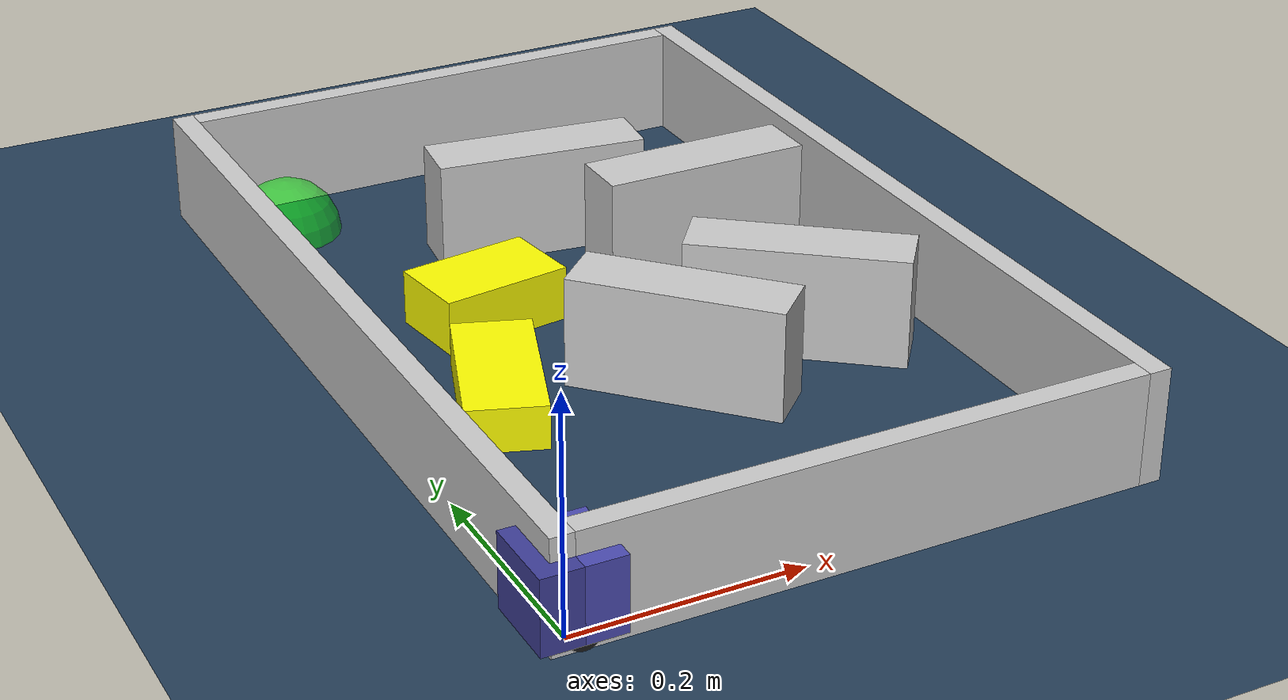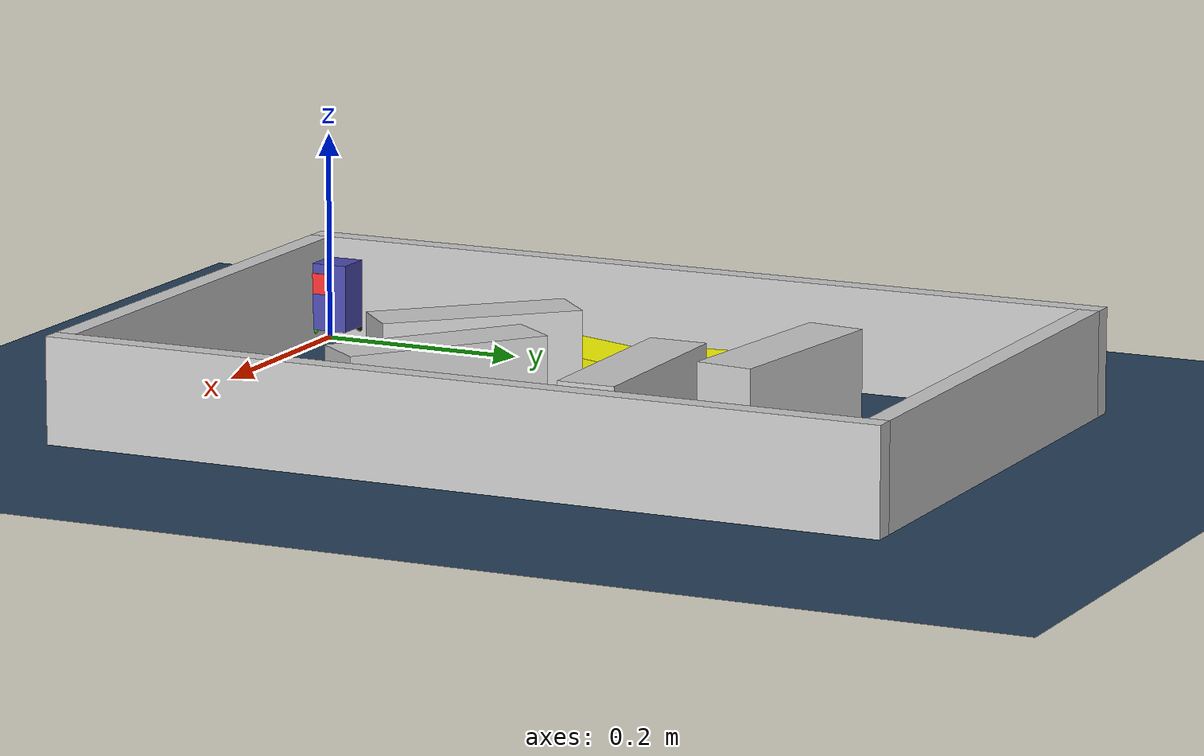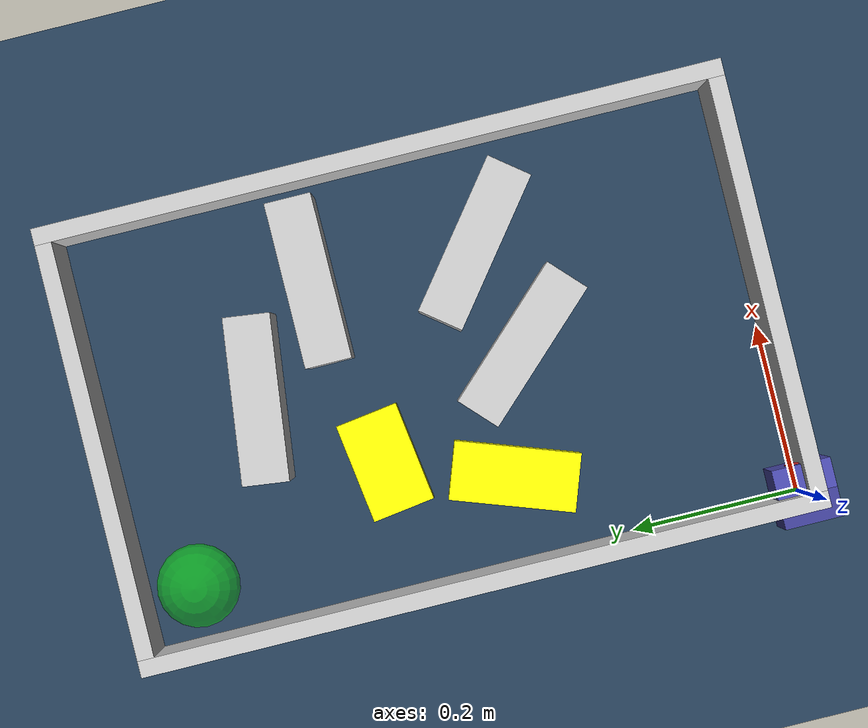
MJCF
<?xml version="1.0" ?>
<mujoco model="generated_environment">
  <option cone="elliptic" integrator="implicitfast" iterations="100" timestep="0.002"/>
  <default>
    <geom density="1"/>
  </default>
  <asset>
    <texture builtin="gradient" height="3072" rgb1="0.3 0.5 0.7" rgb2="0 0 0" type="skybox" width="512"/>
    <texture builtin="checker" height="300" mark="edge" markrgb="0.8 0.8 0.8" name="groundplane" rgb1="0.2 0.3 0.4" rgb2="0.1 0.2 0.3" type="2d" width="300"/>
    <material name="groundplane" reflectance="0.2" texrepeat="5 5" texture="groundplane" texuniform="true"/>
    <material name="robot" rgba="1.0 1.0 0.0 1.0"/>
  </asset>
  <include file="/home/dhruv/projects_dhruv/namo/namo_cpp/test_xml/little-car-modeling-package/assets/mjcf/little_car.xml"/>
  <worldbody>
    <light dir="0 0 -1" directional="true" pos="0 0 1.5"/>
    <geom condim="4" friction="0.5 0.005 0.001" material="groundplane" name="floor" size="0 0 0.05" type="plane"/>
    <body name="walls">
      <geom name="wall_1" condim="4" pos="-0.01 0.3875 0.05" friction="1 0.005 0.0001" rgba="0.800000011920929 0.800000011920929 0.800000011920929 1.0" size="0.01 0.40750000000000003 0.05" type="box"/>
      <geom name="wall_2" condim="4" pos="0.5 0.3875 0.05" friction="1 0.005 0.0001" rgba="0.800000011920929 0.800000011920929 0.800000011920929 1.0" size="0.01 0.40750000000000003 0.05" type="box"/>
      <geom name="wall_3" condim="4" pos="0.245 -0.01 0.05" friction="1 0.005 0.0001" rgba="0.800000011920929 0.800000011920929 0.800000011920929 1.0" size="0.245 0.01 0.05" type="box"/>
      <geom name="wall_4" condim="4" pos="0.245 0.785 0.05" friction="1 0.005 0.0001" rgba="0.800000011920929 0.800000011920929 0.800000011920929 1.0" size="0.245 0.01 0.05" type="box"/>
    </body>
    <body name="obstacle_1_movable">
      <geom name="obstacle_1_movable" condim="4" pos="0.09783662067631116 0.3225060677418098 0.02" quat="-0.9853582474019917 0 0 0.17049669872720505" friction="1 0.005 0.0001" rgba="1 1 0 1" size="0.035 0.075 0.02" type="box" mass="0.1"/>
      <joint type="free"/>
    </body>
    <body name="obstacle_2_movable">
      <geom name="obstacle_2_movable" condim="4" pos="0.15089811750270246 0.46639088290234726 0.025" quat="0.6559941096877624 0 0 0.7547660088099888" friction="1 0.005 0.0001" rgba="1 1 0 1" size="0.0375 0.06 0.025" type="box" mass="0.1"/>
      <joint type="free"/>
    </body>
    <body name="wall_5">
      <geom name="wall_5" condim="4" pos="0.25831933150973185 0.5910169308000917 0.05" quat="0.7495502565687545 0 0 0.6619474396639919" friction="1 0.005 0.0001" rgba="0.800000011920929 0.800000011920929 0.800000011920929 1.0" size="0.0275 0.0975 0.05" type="box"/>
    </body>
    <body name="wall_6">
      <geom name="wall_6" condim="4" pos="0.37227238996504775 0.3042317210763439 0.05" quat="-0.43886854284023274 0 0 0.8985512796191939" friction="1 0.005 0.0001" rgba="0.800000011920929 0.800000011920929 0.800000011920929 1.0" size="0.0275 0.0975 0.05" type="box"/>
    </body>
    <body name="wall_7">
      <geom name="wall_7" condim="4" pos="0.3761951297882178 0.5005382362954023 0.05" quat="0.7057009325117728 0 0 0.7085098403353437" friction="1 0.005 0.0001" rgba="0.800000011920929 0.800000011920929 0.800000011920929 1.0" size="0.0275 0.0975 0.05" type="box"/>
    </body>
    <body name="wall_8">
      <geom name="wall_8" condim="4" pos="0.24612699919401357 0.27895121237212556 0.05" quat="0.3951999844410233 0 0 0.9185951079217737" friction="1 0.005 0.0001" rgba="0.800000011920929 0.800000011920929 0.800000011920929 1.0" size="0.095 0.0275 0.05" type="box"/>
    </body>
    <site name="goal" type="sphere" size="0.05 0.05 0.05" rgba="0 1 0 0.5" pos="0.060502 0.718623 0.0"/>
  </worldbody>
</mujoco>

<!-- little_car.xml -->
<mujoco model="little_car">
  <compiler angle="radian" autolimits="true"/>
  <default>
    <geom condim="4"/>
    <joint damping="0.01" armature="0.0001"/>
  </default>
  <worldbody>
    <body name="car" pos="0 0 0.010000">
      <freejoint name="car_freejoint"/>
      <inertial pos="0.000000 0 0.037500" mass="0.350000"
                diaginertia="0.000266 0.000266 0.000286"/>
      <geom name="front_chassis_collision" type="box" pos="0.017500 0 0.037500"
            size="0.017500 0.035000 0.032500"
            rgba="0.3 0.3 0.7 1"/>
      <geom name="rear_chassis_collision" type="box" pos="-0.017500 0 0.037500"
            size="0.017500 0.035000 0.032500"
            rgba="0.25 0.25 0.6 1"/>
      <geom name="front_marker" type="box" pos="0.034000 0 0.050500"
            size="0.002000 0.015000 0.010000"
            rgba="1.0 0.2 0.2 1" contype="0" conaffinity="0"/>

      <body name="rear_support_body" pos="-0.030000 0.000000 0.002500">
        <joint name="rear_caster_joint" type="ball" damping="0.0001"/>
        <inertial pos="0 0 0" mass="0.025000"
                  diaginertia="0.000001 0.000001 0.000001"/>
        <geom name="rear_support" type="sphere"
              pos="0 0 0"
              size="0.002500"
              friction="0.000000 0.000000 0.000000"
              rgba="0.7 0.1 0.1 1"/>
      </body>

      <body name="front_support_body" pos="0.030000 0.000000 0.002500">
        <joint name="front_caster_joint" type="ball" damping="0.0001"/>
        <inertial pos="0 0 0" mass="0.025000"
                  diaginertia="0.000001 0.000001 0.000001"/>
        <geom name="front_support" type="sphere"
              pos="0 0 0"
              size="0.002500"
              friction="0.000000 0.000000 0.000000"
              rgba="0.1 0.7 0.1 1"/>
      </body>

      <body name="left_wheel" pos="0.000000 0.034000 0.015000">
        <inertial pos="0 0 0" mass="0.050000"
                  diaginertia="0.000003 0.000006 0.000003"/>
        <joint name="left_wheel_joint" type="hinge" axis="0 1 0"/>
        <geom name="left_wheel_collision" type="cylinder" size="0.015000 0.000500"
              euler="1.57079632679 0 0" rgba="0.1 0.1 0.1 1"/>
      </body>

      <body name="right_wheel" pos="0.000000 -0.034000 0.015000">
        <inertial pos="0 0 0" mass="0.050000"
                  diaginertia="0.000003 0.000006 0.000003"/>
        <joint name="right_wheel_joint" type="hinge" axis="0 1 0"/>
        <geom name="right_wheel_collision" type="cylinder" size="0.015000 0.000500"
              euler="1.57079632679 0 0" rgba="0.1 0.1 0.1 1"/>
      </body>
    </body>
  </worldbody>
  <contact>
    <exclude body1="car" body2="left_wheel"/>
    <exclude body1="car" body2="right_wheel"/>
  </contact>
  <actuator>
    <velocity name="left_wheel_drive" joint="left_wheel_joint"
              ctrlrange="-25.000000 25.000000"
              kv="0.750000" forcerange="-0.500000 0.500000"/>
    <velocity name="right_wheel_drive" joint="right_wheel_joint"
              ctrlrange="-25.000000 25.000000"
              kv="0.750000" forcerange="-0.500000 0.500000"/>
  </actuator>
</mujoco>
